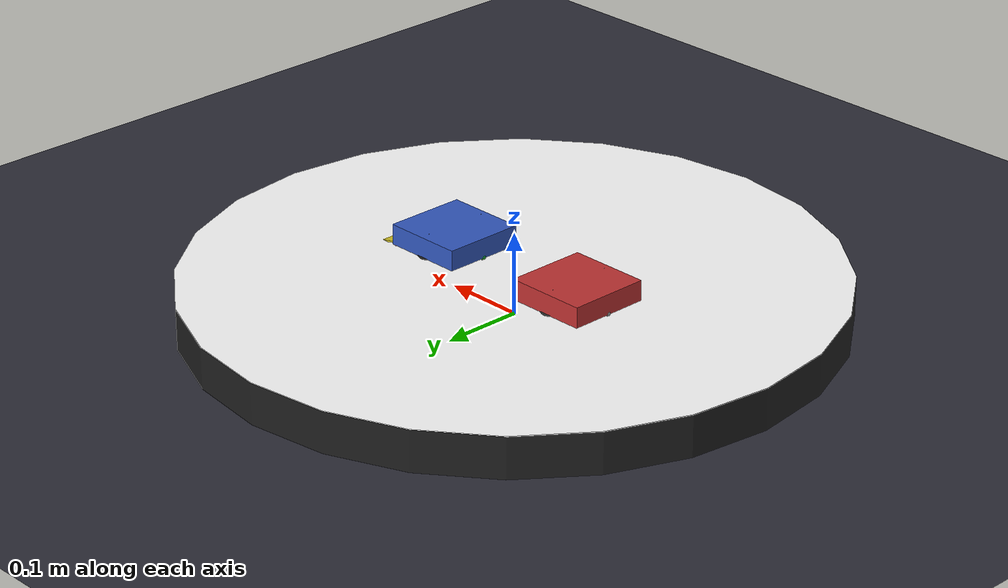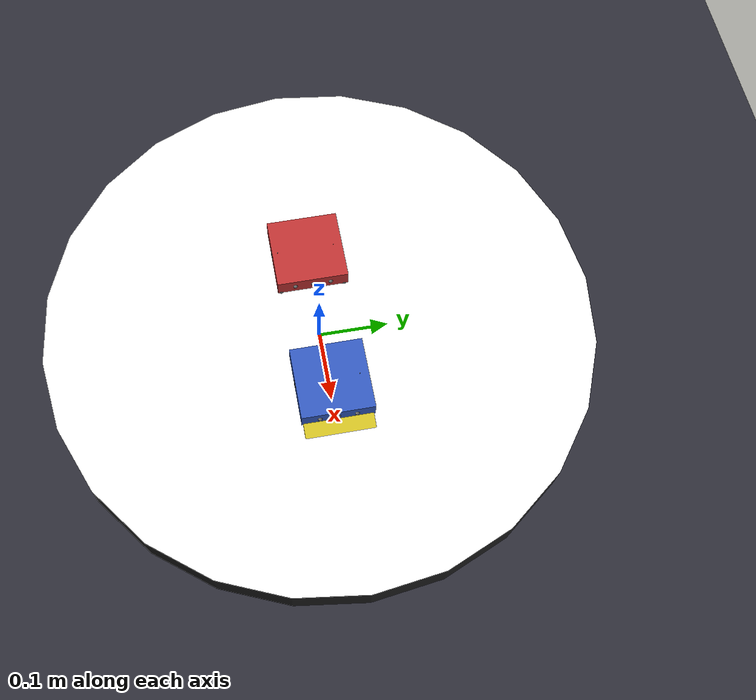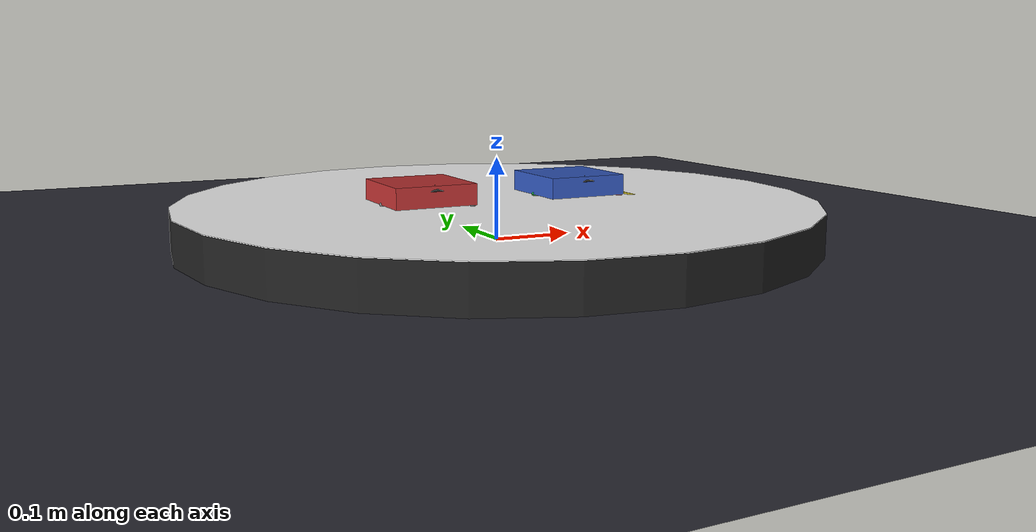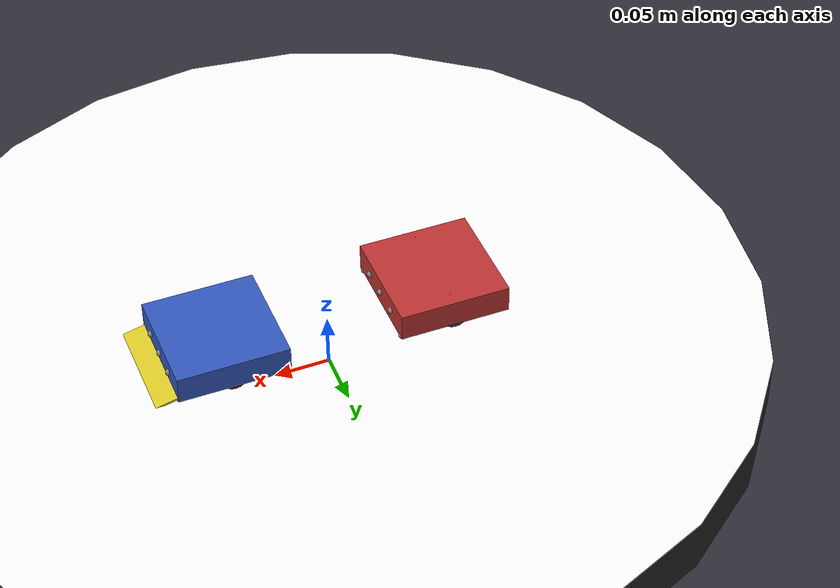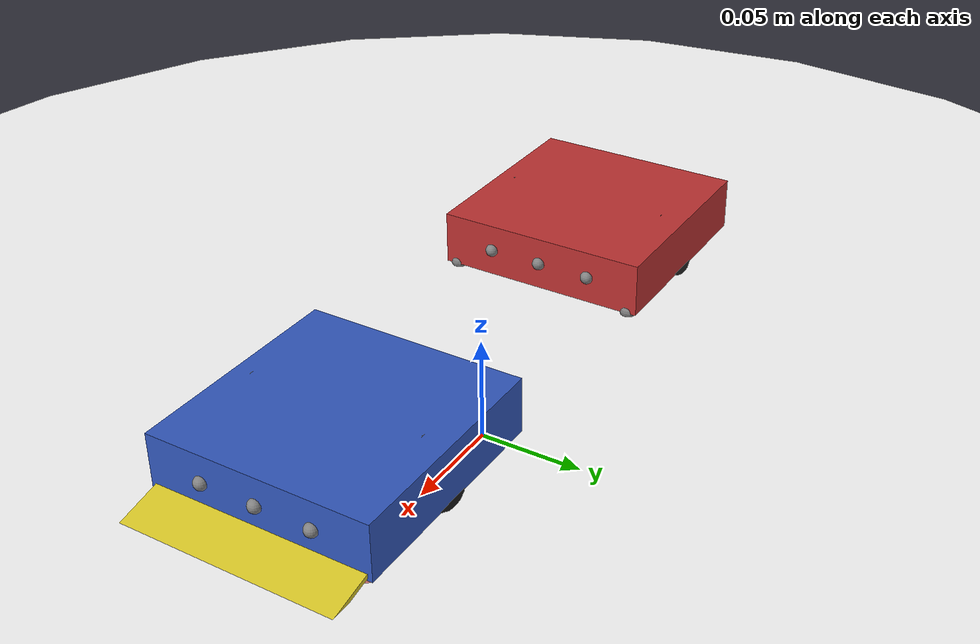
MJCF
<mujoco model="sumobot_scene">
  <!--
    Complete sumo scene: arena + two robots + lighting.
    Timestep 1/240s matches the JS simulation.
  -->

  <option timestep="0.004167" gravity="0 0 -9.81" integrator="implicit">
    <flag contact="enable" energy="disable"/>
  </option>

  <compiler angle="radian" autolimits="true"/>

  <visual>
    <headlight diffuse="0.6 0.6 0.6" ambient="0.3 0.3 0.3" specular="0.1 0.1 0.1"/>
    <quality shadowsize="2048"/>
    <map znear="0.005" zfar="10"/>
  </visual>

  <default>
    <joint damping="0.0001" armature="0.00001"/>
    <geom condim="4" solimp="0.95 0.99 0.001" solref="0.004 1"/>
  </default>

  <asset>
    <!-- Arena materials -->
    <material name="dohyo_black" rgba="0.12 0.12 0.12 1"/>
    <material name="dohyo_border" rgba="1 1 1 1"/>
    <material name="floor_dark" rgba="0.18 0.18 0.22 1"/>
    <!-- Bot materials -->
    <material name="chassis_blue" rgba="0.2 0.35 0.75 1"/>
    <material name="wedge_yellow" rgba="0.85 0.78 0.15 1"/>
    <material name="wheel_black" rgba="0.1 0.1 0.1 1"/>
    <!-- Enemy materials -->
    <material name="enemy_red" rgba="0.75 0.2 0.2 1"/>
    <material name="enemy_wedge" rgba="0.6 0.15 0.15 1"/>
    <material name="enemy_wheel" rgba="0.15 0.15 0.15 1"/>
  </asset>

  <worldbody>
    <!-- Lighting -->
    <light name="top_light" pos="0 0 1.5" dir="0 0 -1" diffuse="0.8 0.8 0.8"
           specular="0.3 0.3 0.3" castshadow="true"/>
    <light name="side_light" pos="0.8 0.8 1.0" dir="-0.4 -0.4 -0.7"
           diffuse="0.4 0.4 0.4" specular="0.1 0.1 0.1"/>

    <!-- Camera -->
    <camera name="top_view" pos="0 0 1.2" euler="0 0 0" fovy="50"/>
    <camera name="side_view" pos="0.8 -0.8 0.5" xyaxes="1 1 0 0 0 1" fovy="45"/>

    <!-- ===== ARENA ===== -->
    <geom name="floor" type="plane" size="1.5 1.5 0.01"
          material="floor_dark" friction="0.3 0.005 0.001"/>

    <body name="dohyo" pos="0 0 0.025">
      <geom name="dohyo_surface" type="cylinder" size="0.385 0.025"
            material="dohyo_black" friction="0.6 0.005 0.001"
            condim="4" solimp="0.95 0.99 0.001" solref="0.004 1"/>
      <geom name="dohyo_border_ring" type="cylinder" size="0.385 0.0005"
            pos="0 0 0.0255" material="dohyo_border"
            contype="0" conaffinity="0"/>
    </body>

    <!-- ===== BOT (blue) ===== -->
    <body name="bot_chassis" pos="0.1 0 0.065">
      <freejoint name="bot_root"/>
      <inertial pos="-0.008 0 -0.004" mass="0.47"
                diaginertia="0.000396 0.000396 0.000784"/>

      <geom name="bot_body" type="box" size="0.05 0.05 0.0125"
            material="chassis_blue" friction="0.4 0.005 0.001" mass="0"/>
      <geom name="bot_wedge" type="box" size="0.018 0.048 0.001"
            pos="0.052 0 -0.011" euler="0 0.224 0"
            material="wedge_yellow" friction="0.3 0.003 0.001" mass="0.01"/>
      <geom name="bot_skid" type="sphere" size="0.005"
            pos="-0.045 0 -0.0125" friction="0.2 0.001 0.001" mass="0.005"/>

      <!-- Sensor sites -->
      <site name="bot_laser_center" pos="0.05 0 0" size="0.003"/>
      <site name="bot_laser_left"   pos="0.05 -0.025 0" euler="0 0 -0.526" size="0.003"/>
      <site name="bot_laser_right"  pos="0.05  0.025 0" euler="0 0  0.526" size="0.003"/>
      <site name="bot_line_fl" pos="0.047 -0.045 -0.0125" size="0.004" rgba="1 0 0 0.5"/>
      <site name="bot_line_fr" pos="0.047  0.045 -0.0125" size="0.004" rgba="1 0 0 0.5"/>
      <site name="bot_line_r"  pos="-0.047 0     -0.0125" size="0.004" rgba="0 1 0 0.5"/>
      <site name="bot_imu" pos="0 0 0" size="0.002"/>

      <body name="bot_wheel_L" pos="0 -0.04 -0.003">
        <joint name="bot_wheel_L_joint" type="hinge" axis="0 1 0"/>
        <geom name="bot_wheel_L_geom" type="cylinder" size="0.015 0.005"
              euler="90 0 0" material="wheel_black"
              friction="0.6 0.008 0.002" mass="0.008" condim="4"/>
      </body>
      <body name="bot_wheel_R" pos="0 0.04 -0.003">
        <joint name="bot_wheel_R_joint" type="hinge" axis="0 1 0"/>
        <geom name="bot_wheel_R_geom" type="cylinder" size="0.015 0.005"
              euler="90 0 0" material="wheel_black"
              friction="0.6 0.008 0.002" mass="0.008" condim="4"/>
      </body>
    </body>

    <!-- ===== ENEMY (red) ===== -->
    <body name="ene_chassis" pos="-0.1 0 0.065">
      <freejoint name="ene_root"/>
      <inertial pos="-0.005 0 -0.003" mass="0.47"
                diaginertia="0.000396 0.000396 0.000784"/>

      <geom name="ene_body" type="box" size="0.05 0.05 0.0125"
            material="enemy_red" friction="0.4 0.005 0.001" mass="0"/>
      <geom name="ene_skid" type="sphere" size="0.005"
            pos="-0.045 0 -0.0125" friction="0.2 0.001 0.001" mass="0.005"/>

      <site name="ene_laser_center" pos="0.05 0 0" size="0.003"/>
      <site name="ene_laser_left"   pos="0.05 -0.025 0" euler="0 0 -0.526" size="0.003"/>
      <site name="ene_laser_right"  pos="0.05  0.025 0" euler="0 0  0.526" size="0.003"/>
      <site name="ene_line_fl" pos="0.047 -0.045 -0.0125" size="0.004"/>
      <site name="ene_line_fr" pos="0.047  0.045 -0.0125" size="0.004"/>
      <site name="ene_line_r"  pos="-0.047 0     -0.0125" size="0.004"/>
      <site name="ene_imu" pos="0 0 0" size="0.002"/>

      <body name="ene_wheel_L" pos="0 -0.04 -0.003">
        <joint name="ene_wheel_L_joint" type="hinge" axis="0 1 0"/>
        <geom name="ene_wheel_L_geom" type="cylinder" size="0.015 0.005"
              euler="90 0 0" material="enemy_wheel"
              friction="0.6 0.008 0.002" mass="0.008" condim="4"/>
      </body>
      <body name="ene_wheel_R" pos="0 0.04 -0.003">
        <joint name="ene_wheel_R_joint" type="hinge" axis="0 1 0"/>
        <geom name="ene_wheel_R_geom" type="cylinder" size="0.015 0.005"
              euler="90 0 0" material="enemy_wheel"
              friction="0.6 0.008 0.002" mass="0.008" condim="4"/>
      </body>
    </body>
  </worldbody>

  <!-- Actuators -->
  <actuator>
    <motor name="bot_motor_L" joint="bot_wheel_L_joint" ctrlrange="-0.05 0.05" ctrllimited="true"/>
    <motor name="bot_motor_R" joint="bot_wheel_R_joint" ctrlrange="-0.05 0.05" ctrllimited="true"/>
    <motor name="ene_motor_L" joint="ene_wheel_L_joint" ctrlrange="-0.05 0.05" ctrllimited="true"/>
    <motor name="ene_motor_R" joint="ene_wheel_R_joint" ctrlrange="-0.05 0.05" ctrllimited="true"/>
  </actuator>

  <!-- Sensors -->
  <sensor>
    <accelerometer name="bot_accel" site="bot_imu"/>
    <gyro name="bot_gyro" site="bot_imu"/>
    <accelerometer name="ene_accel" site="ene_imu"/>
    <gyro name="ene_gyro" site="ene_imu"/>
  </sensor>
</mujoco>
